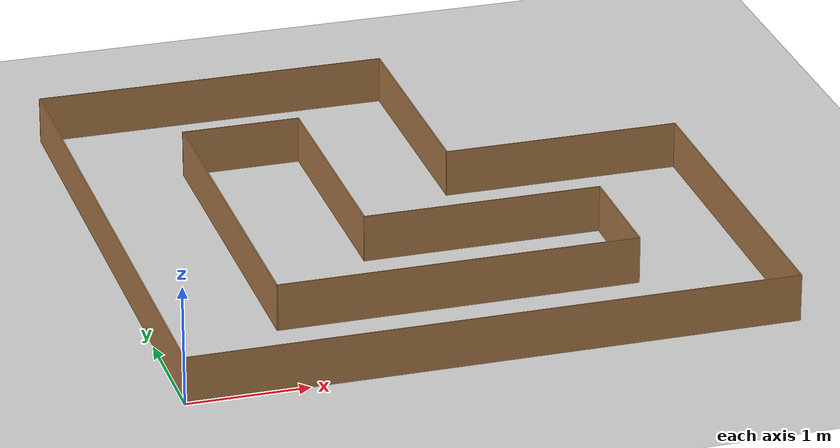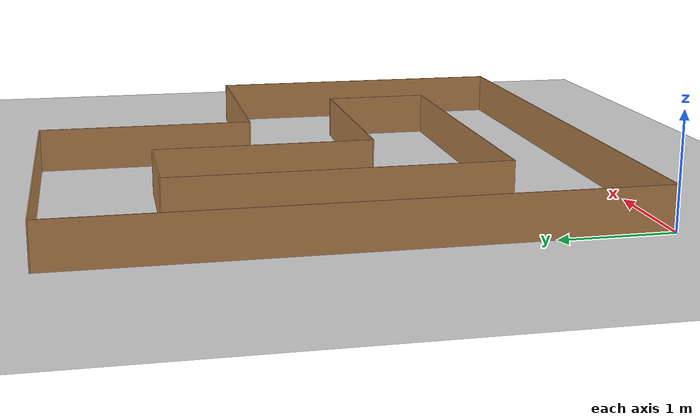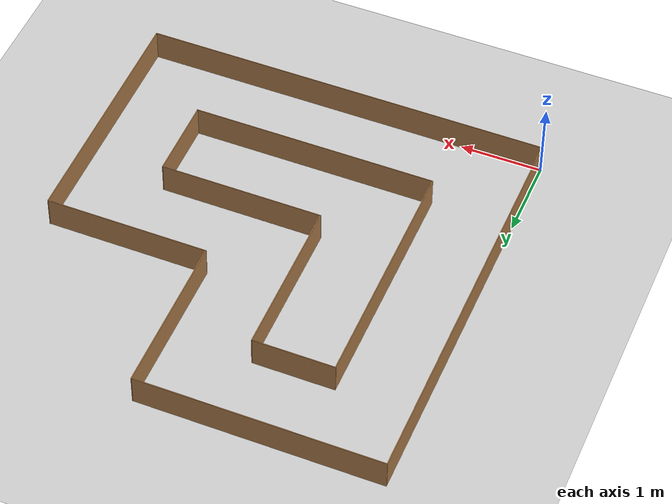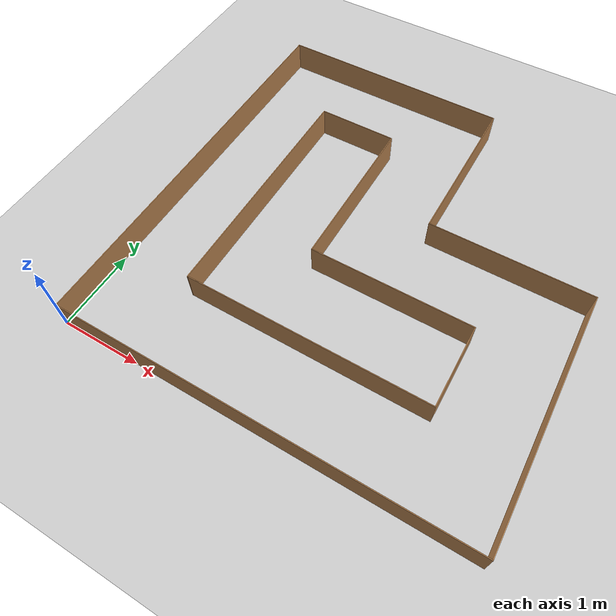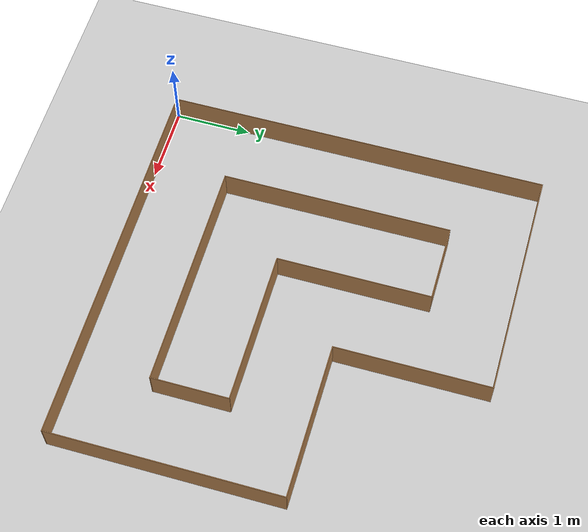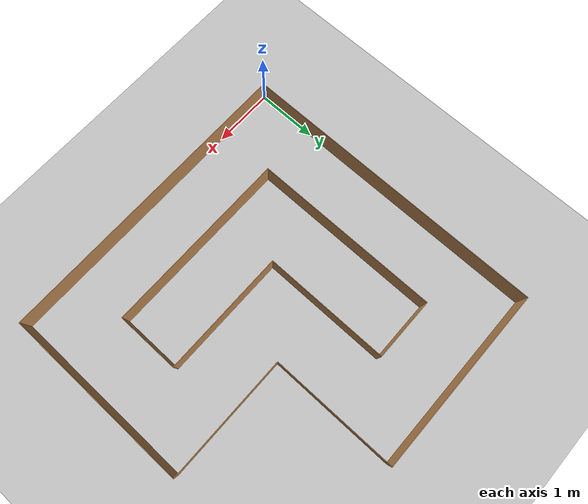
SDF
<sdf version='1.6'>
  <world name='default'>
    <!-- A global light source -->
    <include>
      <uri>model://sun</uri>
    </include>

    <!-- A ground plane -->
    <include>
      <uri>model://ground_plane</uri>
    </include>

    <physics type="ode">
      <real_time_update_rate>1000.0</real_time_update_rate>
      <max_step_size>0.001</max_step_size>
      <real_time_factor>1</real_time_factor>
      <ode>
        <solver>
          <type>quick</type>
          <iters>150</iters>
          <precon_iters>0</precon_iters>
          <sor>1.400000</sor>
          <use_dynamic_moi_rescaling>1</use_dynamic_moi_rescaling>
        </solver>
        <constraints>
          <cfm>0.00001</cfm>
          <erp>0.2</erp>
          <contact_max_correcting_vel>2000.000000</contact_max_correcting_vel>
          <contact_surface_layer>0.01000</contact_surface_layer>
        </constraints>
      </ode>
    </physics>

    <!-- Load world -->
    <include>
      <uri>model://circuit_left_right_turns</uri>
    </include>

    <scene>
      <ambient>0.4 0.4 0.4 1</ambient>
      <background>0.7 0.7 0.7 1</background>
      <shadows>false</shadows>
    </scene>

    <gui fullscreen='0'>
      <camera name='user_camera'>
        <pose>2.5 2.5 9.5 0 1.57079 1.57079</pose>
        <view_controller>orbit</view_controller>
      </camera>
    </gui>
  </world>
</sdf>

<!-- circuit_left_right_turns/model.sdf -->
<sdf version="1.6">
  <model name="circuit_left_right_turns">
    <pose frame="">0 0 0 0 -0 0</pose>
    <link name="Wall_0">
      <collision name="Wall_0_Collision">
        <geometry>
          <box>
            <size>5.0 0.01 0.4</size>
          </box>
        </geometry>
        <pose frame="">0 0 0.2 0 -0 0</pose>
      </collision>
      <visual name="Wall_0_Visual">
        <pose frame="">0 0 0.2 0 -0 0</pose>
        <geometry>
          <box>
            <size>5.0 0.01 0.4</size>
          </box>
        </geometry>
        <material>
          <script>
            <uri>file://media/materials/scripts/gazebo.material</uri>
            <name>Gazebo/Wood</name>
          </script>
          <ambient>1 1 1 1</ambient>
        </material>
      </visual>
      <pose frame="">0.005 2.5 0 0 -0 1.5708</pose>
    </link>
    <link name="Wall_1">
      <collision name="Wall_1_Collision">
        <geometry>
          <box>
            <size>3.0 0.01 0.4</size>
          </box>
        </geometry>
        <pose frame="">0 0 0.2 0 -0 0</pose>
      </collision>
      <visual name="Wall_1_Visual">
        <pose frame="">0 0 0.2 0 -0 0</pose>
        <geometry>
          <box>
            <size>3.0 0.01 0.4</size>
          </box>
        </geometry>
        <material>
          <script>
            <uri>file://media/materials/scripts/gazebo.material</uri>
            <name>Gazebo/Wood</name>
          </script>
          <ambient>1 1 1 1</ambient>
        </material>
      </visual>
      <pose frame="">1.5 5.005 0 0 -0 0</pose>
    </link>
    <link name="Wall_2">
      <collision name="Wall_2_Collision">
        <geometry>
          <box>
            <size>2.0 0.01 0.4</size>
          </box>
        </geometry>
        <pose frame="">0 0 0.2 0 -0 0</pose>
      </collision>
      <visual name="Wall_2_Visual">
        <pose frame="">0 0 0.2 0 -0 0</pose>
        <geometry>
          <box>
            <size>2.0 0.01 0.4</size>
          </box>
        </geometry>
        <material>
          <script>
            <uri>file://media/materials/scripts/gazebo.material</uri>
            <name>Gazebo/Wood</name>
          </script>
          <ambient>1 1 1 1</ambient>
        </material>
      </visual>
      <pose frame="">3.005 4.01 0 0 -0 1.5708</pose>
    </link>
    <link name="Wall_3">
      <collision name="Wall_3_Collision">
        <geometry>
          <box>
            <size>2.0 0.01 0.4</size>
          </box>
        </geometry>
        <pose frame="">0 0 0.2 0 -0 0</pose>
      </collision>
      <visual name="Wall_3_Visual">
        <pose frame="">0 0 0.2 0 -0 0</pose>
        <geometry>
          <box>
            <size>2.0 0.01 0.4</size>
          </box>
        </geometry>
        <material>
          <script>
            <uri>file://media/materials/scripts/gazebo.material</uri>
            <name>Gazebo/Wood</name>
          </script>
          <ambient>1 1 1 1</ambient>
        </material>
      </visual>
      <pose frame="">4.0 3.005 0 0 -0 0</pose>
    </link>
    <link name="Wall_4">
      <collision name="Wall_4_Collision">
        <geometry>
          <box>
            <size>3.0 0.01 0.4</size>
          </box>
        </geometry>
        <pose frame="">0 0 0.2 0 -0 0</pose>
      </collision>
      <visual name="Wall_4_Visual">
        <pose frame="">0 0 0.2 0 -0 0</pose>
        <geometry>
          <box>
            <size>3.0 0.01 0.4</size>
          </box>
        </geometry>
        <material>
          <script>
            <uri>file://media/materials/scripts/gazebo.material</uri>
            <name>Gazebo/Wood</name>
          </script>
          <ambient>1 1 1 1</ambient>
        </material>
      </visual>
      <pose frame="">5.005 1.51 0 0 -0 1.5708</pose>
    </link>
    <link name="Wall_5">
      <collision name="Wall_5_Collision">
        <geometry>
          <box>
            <size>5.0 0.01 0.4</size>
          </box>
        </geometry>
        <pose frame="">0 0 0.2 0 -0 0</pose>
      </collision>
      <visual name="Wall_5_Visual">
        <pose frame="">0 0 0.2 0 -0 0</pose>
        <geometry>
          <box>
            <size>5.0 0.01 0.4</size>
          </box>
        </geometry>
        <material>
          <script>
            <uri>file://media/materials/scripts/gazebo.material</uri>
            <name>Gazebo/Wood</name>
          </script>
          <ambient>1 1 1 1</ambient>
        </material>
      </visual>
      <pose frame="">2.51 0.005 0 0 -0 0</pose>
    </link>
    <link name="Wall_6">
      <collision name="Wall_6_Collision">
        <geometry>
          <box>
            <size>3.0 0.01 0.4</size>
          </box>
        </geometry>
        <pose frame="">0 0 0.2 0 -0 0</pose>
      </collision>
      <visual name="Wall_6_Visual">
        <pose frame="">0 0 0.2 0 -0 0</pose>
        <geometry>
          <box>
            <size>3.0 0.01 0.4</size>
          </box>
        </geometry>
        <material>
          <script>
            <uri>file://media/materials/scripts/gazebo.material</uri>
            <name>Gazebo/Wood</name>
          </script>
          <ambient>1 1 1 1</ambient>
        </material>
      </visual>
      <pose frame="">1.005 2.5 0 0 -0 1.5708</pose>
    </link>
    <link name="Wall_7">
      <collision name="Wall_7_Collision">
        <geometry>
          <box>
            <size>1.0 0.01 0.4</size>
          </box>
        </geometry>
        <pose frame="">0 0 0.2 0 -0 0</pose>
      </collision>
      <visual name="Wall_7_Visual">
        <pose frame="">0 0 0.2 0 -0 0</pose>
        <geometry>
          <box>
            <size>1.0 0.01 0.4</size>
          </box>
        </geometry>
        <material>
          <script>
            <uri>file://media/materials/scripts/gazebo.material</uri>
            <name>Gazebo/Wood</name>
          </script>
          <ambient>1 1 1 1</ambient>
        </material>
      </visual>
      <pose frame="">1.5 4.005 0 0 -0 0</pose>
    </link>
    <link name="Wall_8">
      <collision name="Wall_8_Collision">
        <geometry>
          <box>
            <size>2.0 0.01 0.4</size>
          </box>
        </geometry>
        <pose frame="">0 0 0.2 0 -0 0</pose>
      </collision>
      <visual name="Wall_8_Visual">
        <pose frame="">0 0 0.2 0 -0 0</pose>
        <geometry>
          <box>
            <size>2.0 0.01 0.4</size>
          </box>
        </geometry>
        <material>
          <script>
            <uri>file://media/materials/scripts/gazebo.material</uri>
            <name>Gazebo/Wood</name>
          </script>
          <ambient>1 1 1 1</ambient>
        </material>
      </visual>
      <pose frame="">2.005 3.01 0 0 -0 1.5708</pose>
    </link>
    <link name="Wall_9">
      <collision name="Wall_9_Collision">
        <geometry>
          <box>
            <size>2.0 0.01 0.4</size>
          </box>
        </geometry>
        <pose frame="">0 0 0.2 0 -0 0</pose>
      </collision>
      <visual name="Wall_9_Visual">
        <pose frame="">0 0 0.2 0 -0 0</pose>
        <geometry>
          <box>
            <size>2.0 0.01 0.4</size>
          </box>
        </geometry>
        <material>
          <script>
            <uri>file://media/materials/scripts/gazebo.material</uri>
            <name>Gazebo/Wood</name>
          </script>
          <ambient>1 1 1 1</ambient>
        </material>
      </visual>
      <pose frame="">3.0 2.005 0 0 -0 0</pose>
    </link>
    <link name="Wall_10">
      <collision name="Wall_10_Collision">
        <geometry>
          <box>
            <size>1.0 0.01 0.4</size>
          </box>
        </geometry>
        <pose frame="">0 0 0.2 0 -0 0</pose>
      </collision>
      <visual name="Wall_10_Visual">
        <pose frame="">0 0 0.2 0 -0 0</pose>
        <geometry>
          <box>
            <size>1.0 0.01 0.4</size>
          </box>
        </geometry>
        <material>
          <script>
            <uri>file://media/materials/scripts/gazebo.material</uri>
            <name>Gazebo/Wood</name>
          </script>
          <ambient>1 1 1 1</ambient>
        </material>
      </visual>
      <pose frame="">4.005 1.51 0 0 -0 1.5708</pose>
    </link>
    <link name="Wall_11">
      <collision name="Wall_11_Collision">
        <geometry>
          <box>
            <size>3.0 0.01 0.4</size>
          </box>
        </geometry>
        <pose frame="">0 0 0.2 0 -0 0</pose>
      </collision>
      <visual name="Wall_11_Visual">
        <pose frame="">0 0 0.2 0 -0 0</pose>
        <geometry>
          <box>
            <size>3.0 0.01 0.4</size>
          </box>
        </geometry>
        <material>
          <script>
            <uri>file://media/materials/scripts/gazebo.material</uri>
            <name>Gazebo/Wood</name>
          </script>
          <ambient>1 1 1 1</ambient>
        </material>
      </visual>
      <pose frame="">2.51 1.005 0 0 -0 0</pose>
    </link>
    <static>1</static>
  </model>
</sdf>
